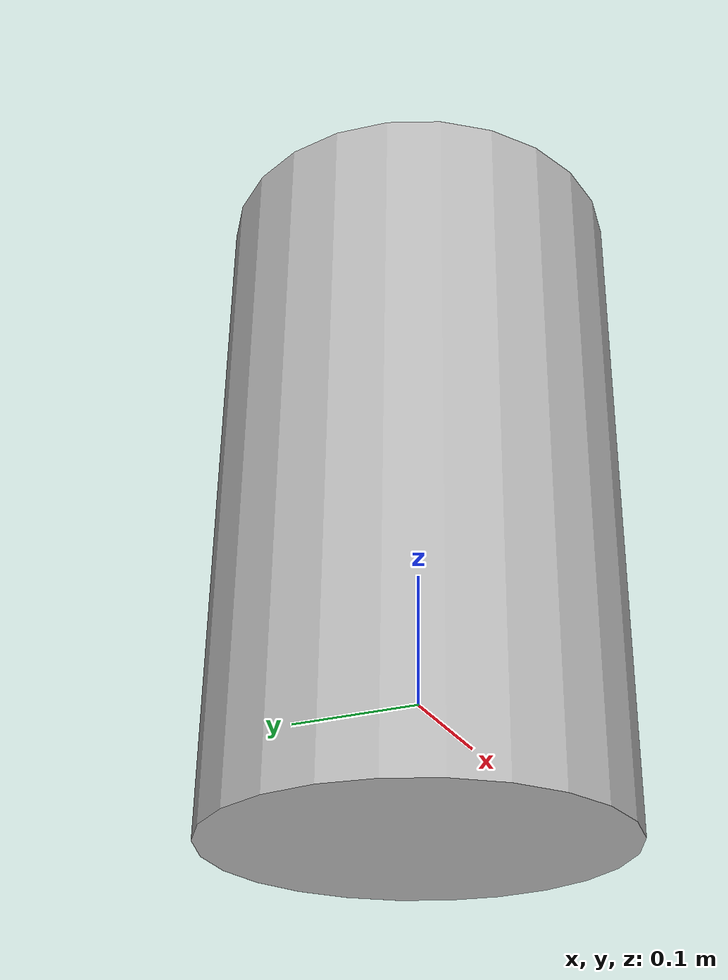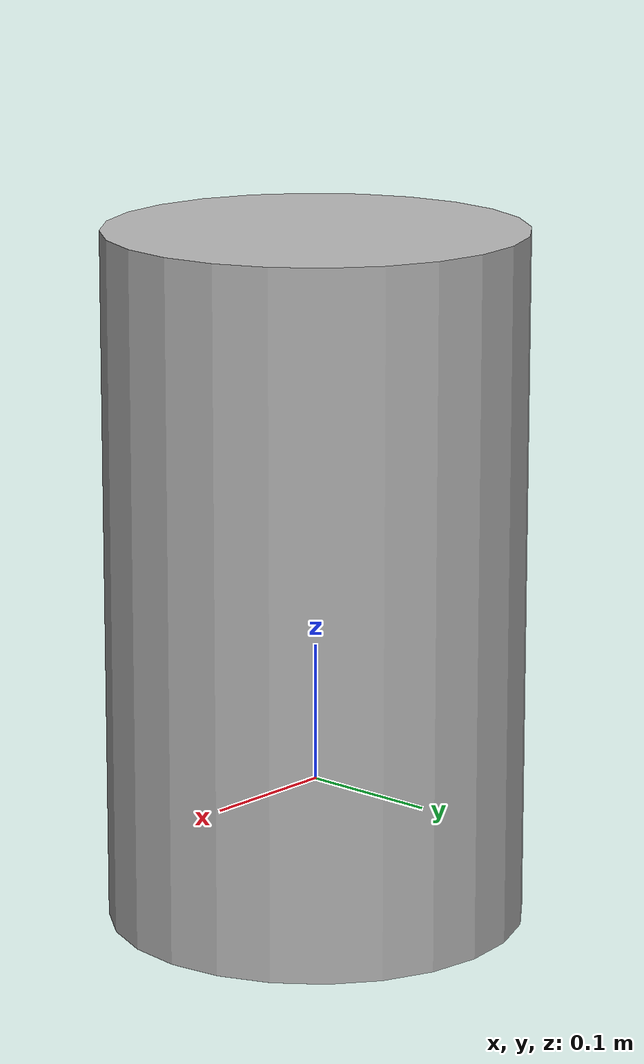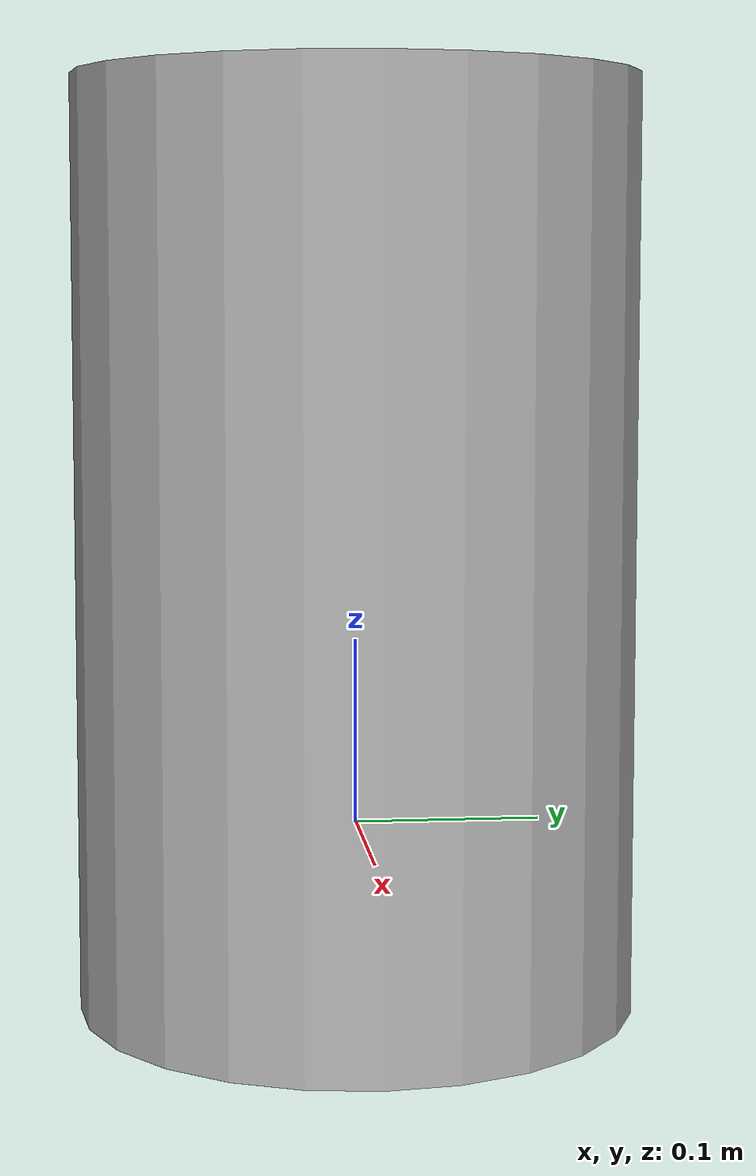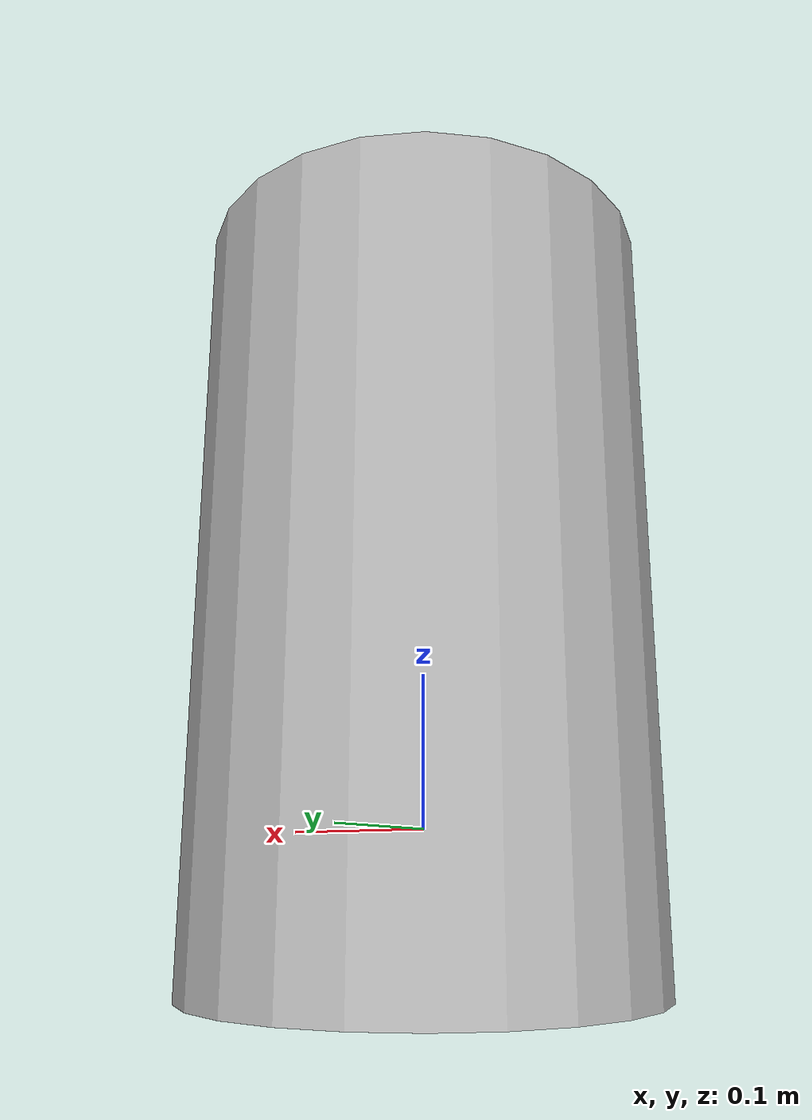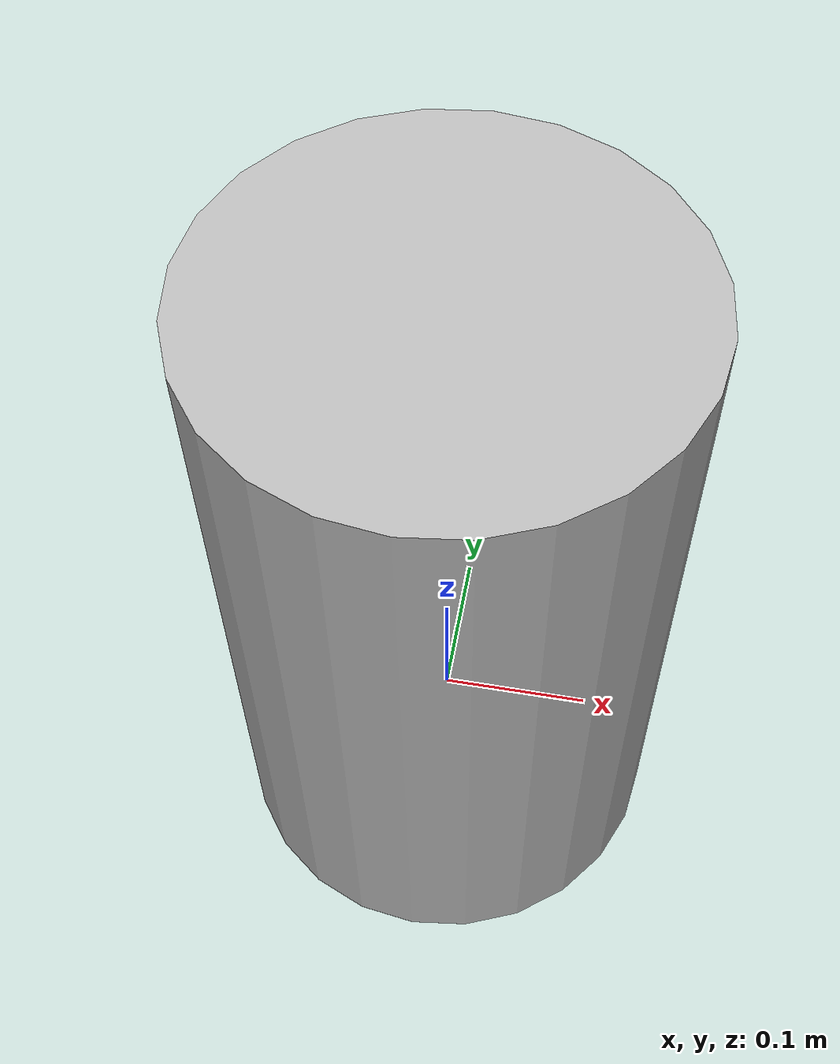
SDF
<?xml version="1.0" ?>
<sdf version="1.6">
  <model name="trashbin">
    <link name="1">
      <collision name="1">
        <geometry>
          <cylinder>
            <length>0.5</length>
            <radius>0.15</radius>
          </cylinder>
        </geometry>
        <name>1</name>
      </collision>
      <visual name="1">
        <geometry>
          <cylinder>
            <length>0.5</length>
            <radius>0.15</radius>
          </cylinder>
        </geometry>
        <name>1</name>
      </visual>
      <pose>0 0 0.15 0 0 0</pose>
      <name>1</name>
    </link>
    <static>true</static>
    <name>trashbin</name>
    <link name="on_top_of">
      <virtual_volume name="on_top_of">
        <geometry>
          <box>
            <size>0.3 0.3 0.17</size>
          </box>
        </geometry>
        <pose>0.0 0.0 0.5 0 0 0</pose>
        <name>on_top_of</name>
      </virtual_volume>
      <name>on_top_of</name>
    </link>
        <link name="in_front_of">
      <virtual_volume name="in_front_of">
        <geometry>
          <box>
            <size>0.05 0.05 0.01</size>
          </box>
        </geometry>
        <name>in_front_of</name>
      </virtual_volume>
      <pose>0.6 0 0 0 0 0</pose>
      <name>in_front_of</name>
    </link>
  </model>
</sdf>
